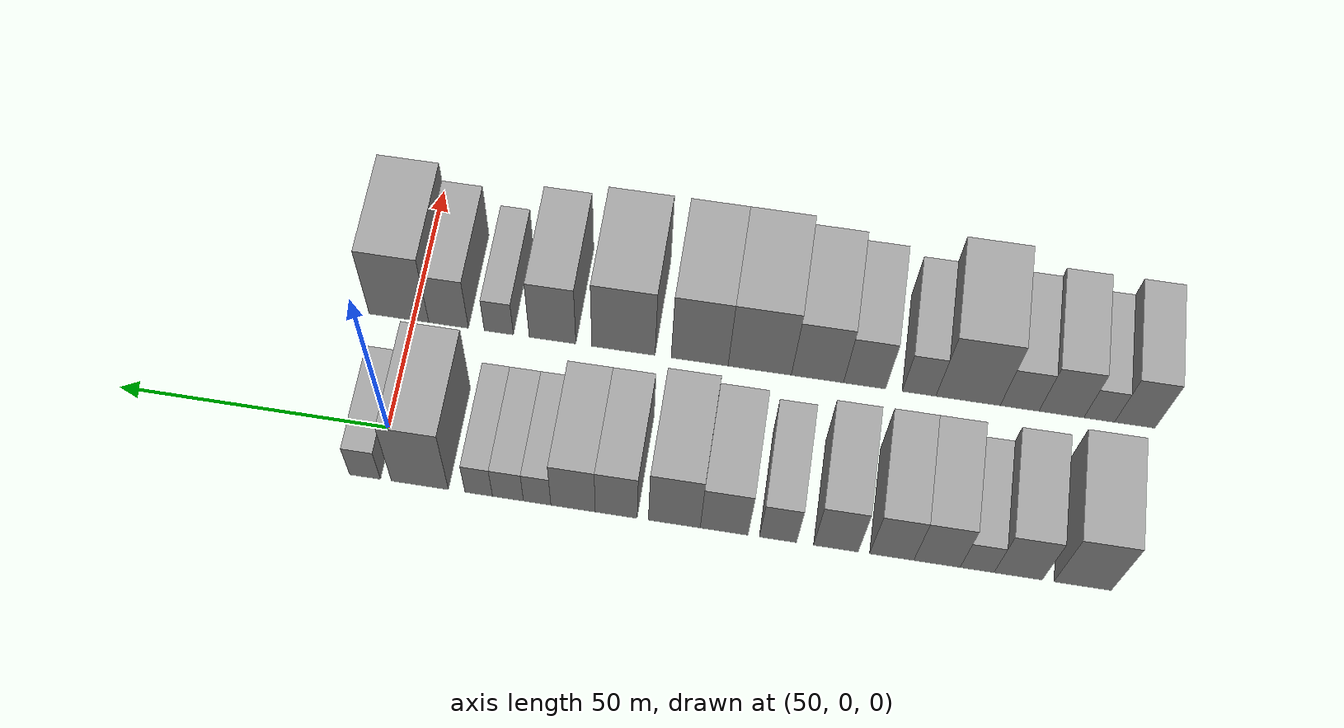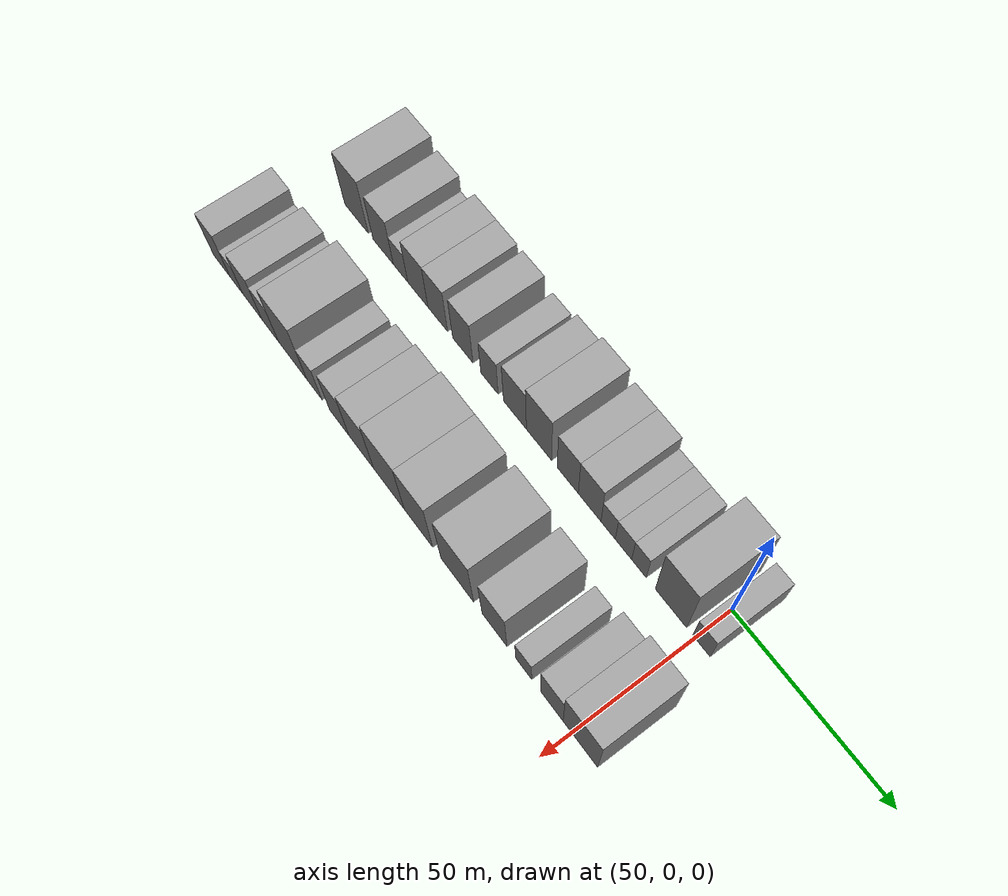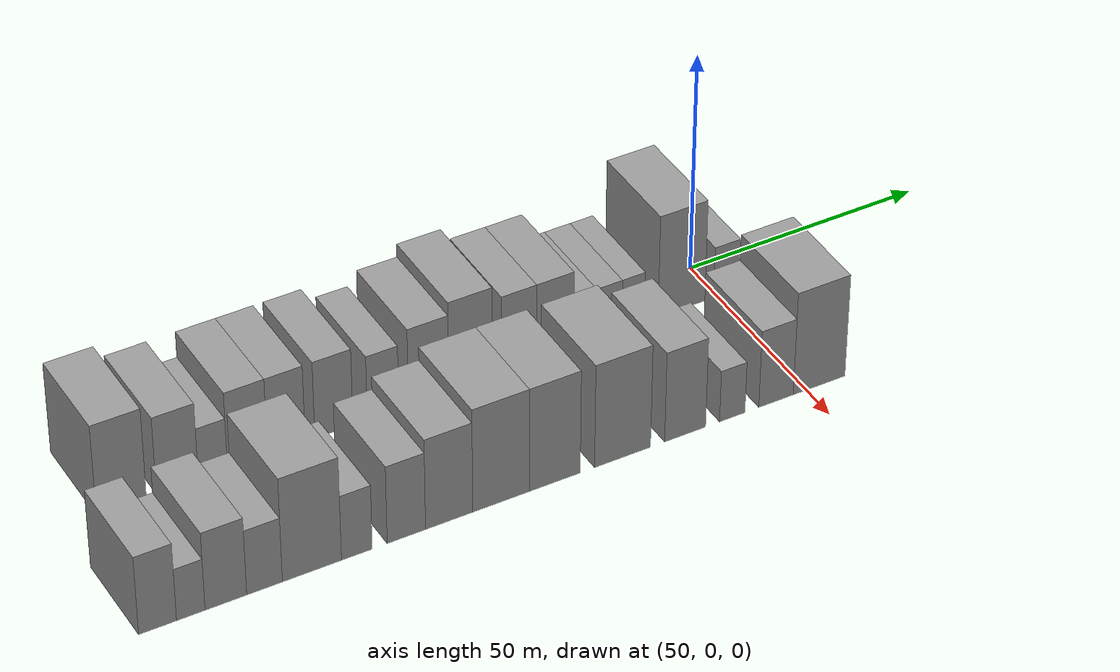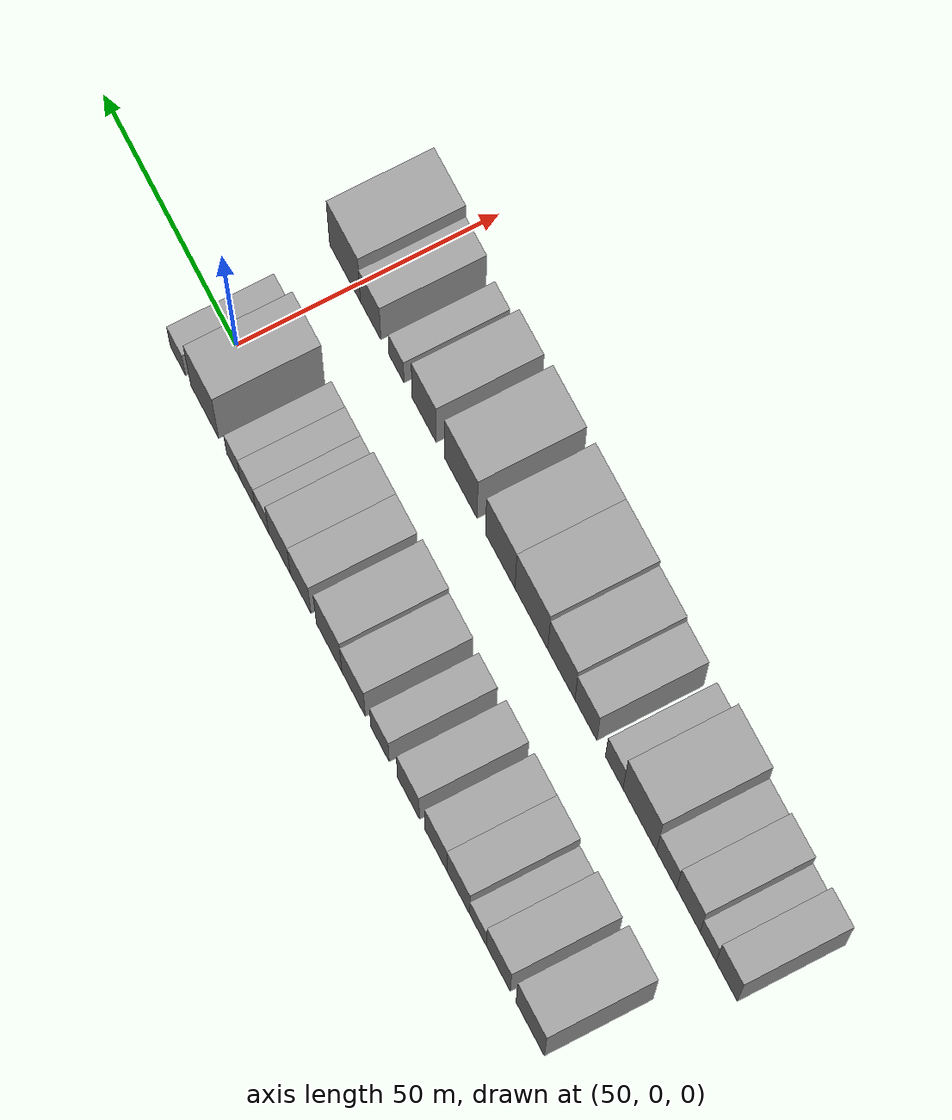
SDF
<sdf version="1.6">
 <world name="default">
  <model name="building_19">
   <static>1</static>
   <pose>50.0000 -125.2117 0 0.000000 0.000000 0.000000</pose>
   <link name="link">
    <pose>0 0 10.50 0 0 0</pose>
    <collision name="collision"><geometry><box><size>20.0000 9.8934 21.0000</size></box></geometry></collision>
    <visual name="visual">
     <cast_shadows>0</cast_shadows>
     <geometry><box><size>20.0000 9.8934 21.0000</size></box></geometry>
     <material>
      <script>
       <uri>model://grey_wall/materials/scripts</uri>
       <uri>model://grey_wall/materials/textures</uri>
       <name>vrc/grey_wall</name>
      </script>
     </material>
    </visual>
   </link>
  </model>
  <model name="building_20">
   <static>1</static>
   <pose>50.0000 -114.0749 0 0.000000 0.000000 0.000000</pose>
   <link name="link">
    <pose>0 0 9.00 0 0 0</pose>
    <collision name="collision"><geometry><box><size>20.0000 8.3802 18.0000</size></box></geometry></collision>
    <visual name="visual">
     <cast_shadows>0</cast_shadows>
     <geometry><box><size>20.0000 8.3802 18.0000</size></box></geometry>
     <material>
      <script>
       <uri>model://grey_wall/materials/scripts</uri>
       <uri>model://grey_wall/materials/textures</uri>
       <name>vrc/grey_wall</name>
      </script>
     </material>
    </visual>
   </link>
  </model>
  <model name="building_21">
   <static>1</static>
   <pose>50.0000 -106.9440 0 0.000000 0.000000 0.000000</pose>
   <link name="link">
    <pose>0 0 6.00 0 0 0</pose>
    <collision name="collision"><geometry><box><size>20.0000 5.8816 12.0000</size></box></geometry></collision>
    <visual name="visual">
     <cast_shadows>0</cast_shadows>
     <geometry><box><size>20.0000 5.8816 12.0000</size></box></geometry>
     <material>
      <script>
       <uri>model://grey_wall/materials/scripts</uri>
       <uri>model://grey_wall/materials/textures</uri>
       <name>vrc/grey_wall</name>
      </script>
     </material>
    </visual>
   </link>
  </model>
  <model name="building_22">
   <static>1</static>
   <pose>50.0000 -99.9603 0 0.000000 0.000000 0.000000</pose>
   <link name="link">
    <pose>0 0 9.00 0 0 0</pose>
    <collision name="collision"><geometry><box><size>20.0000 8.0857 18.0000</size></box></geometry></collision>
    <visual name="visual">
     <cast_shadows>0</cast_shadows>
     <geometry><box><size>20.0000 8.0857 18.0000</size></box></geometry>
     <material>
      <script>
       <uri>model://grey_wall/materials/scripts</uri>
       <uri>model://grey_wall/materials/textures</uri>
       <name>vrc/grey_wall</name>
      </script>
     </material>
    </visual>
   </link>
  </model>
  <model name="building_23">
   <static>1</static>
   <pose>50.0000 -92.0587 0 0.000000 0.000000 0.000000</pose>
   <link name="link">
    <pose>0 0 9.00 0 0 0</pose>
    <collision name="collision"><geometry><box><size>20.0000 7.7175 18.0000</size></box></geometry></collision>
    <visual name="visual">
     <cast_shadows>0</cast_shadows>
     <geometry><box><size>20.0000 7.7175 18.0000</size></box></geometry>
     <material>
      <script>
       <uri>model://grey_wall/materials/scripts</uri>
       <uri>model://grey_wall/materials/textures</uri>
       <name>vrc/grey_wall</name>
      </script>
     </material>
    </visual>
   </link>
  </model>
  <model name="building_24">
   <static>1</static>
   <pose>50.0000 -82.2787 0 0.000000 0.000000 0.000000</pose>
   <link name="link">
    <pose>0 0 9.00 0 0 0</pose>
    <collision name="collision"><geometry><box><size>20.0000 7.8427 18.0000</size></box></geometry></collision>
    <visual name="visual">
     <cast_shadows>0</cast_shadows>
     <geometry><box><size>20.0000 7.8427 18.0000</size></box></geometry>
     <material>
      <script>
       <uri>model://grey_wall/materials/scripts</uri>
       <uri>model://grey_wall/materials/textures</uri>
       <name>vrc/grey_wall</name>
      </script>
     </material>
    </visual>
   </link>
  </model>
  <model name="building_25">
   <static>1</static>
   <pose>50.0000 -72.0794 0 0.000000 0.000000 0.000000</pose>
   <link name="link">
    <pose>0 0 7.50 0 0 0</pose>
    <collision name="collision"><geometry><box><size>20.0000 6.5558 15.0000</size></box></geometry></collision>
    <visual name="visual">
     <cast_shadows>0</cast_shadows>
     <geometry><box><size>20.0000 6.5558 15.0000</size></box></geometry>
     <material>
      <script>
       <uri>model://grey_wall/materials/scripts</uri>
       <uri>model://grey_wall/materials/textures</uri>
       <name>vrc/grey_wall</name>
      </script>
     </material>
    </visual>
   </link>
  </model>
  <model name="building_26">
   <static>1</static>
   <pose>50.0000 -62.5581 0 0.000000 0.000000 0.000000</pose>
   <link name="link">
    <pose>0 0 9.00 0 0 0</pose>
    <collision name="collision"><geometry><box><size>20.0000 8.4868 18.0000</size></box></geometry></collision>
    <visual name="visual">
     <cast_shadows>0</cast_shadows>
     <geometry><box><size>20.0000 8.4868 18.0000</size></box></geometry>
     <material>
      <script>
       <uri>model://grey_wall/materials/scripts</uri>
       <uri>model://grey_wall/materials/textures</uri>
       <name>vrc/grey_wall</name>
      </script>
     </material>
    </visual>
   </link>
  </model>
  <model name="building_27">
   <static>1</static>
   <pose>50.0000 -53.7057 0 0.000000 0.000000 0.000000</pose>
   <link name="link">
    <pose>0 0 10.50 0 0 0</pose>
    <collision name="collision"><geometry><box><size>20.0000 9.2180 21.0000</size></box></geometry></collision>
    <visual name="visual">
     <cast_shadows>0</cast_shadows>
     <geometry><box><size>20.0000 9.2180 21.0000</size></box></geometry>
     <material>
      <script>
       <uri>model://grey_wall/materials/scripts</uri>
       <uri>model://grey_wall/materials/textures</uri>
       <name>vrc/grey_wall</name>
      </script>
     </material>
    </visual>
   </link>
  </model>
  <model name="building_28">
   <static>1</static>
   <pose>50.0000 -43.3531 0 0.000000 0.000000 0.000000</pose>
   <link name="link">
    <pose>0 0 9.00 0 0 0</pose>
    <collision name="collision"><geometry><box><size>20.0000 7.4873 18.0000</size></box></geometry></collision>
    <visual name="visual">
     <cast_shadows>0</cast_shadows>
     <geometry><box><size>20.0000 7.4873 18.0000</size></box></geometry>
     <material>
      <script>
       <uri>model://grey_wall/materials/scripts</uri>
       <uri>model://grey_wall/materials/textures</uri>
       <name>vrc/grey_wall</name>
      </script>
     </material>
    </visual>
   </link>
  </model>
  <model name="building_29">
   <static>1</static>
   <pose>50.0000 -35.6290 0 0.000000 0.000000 0.000000</pose>
   <link name="link">
    <pose>0 0 9.00 0 0 0</pose>
    <collision name="collision"><geometry><box><size>20.0000 7.9609 18.0000</size></box></geometry></collision>
    <visual name="visual">
     <cast_shadows>0</cast_shadows>
     <geometry><box><size>20.0000 7.9609 18.0000</size></box></geometry>
     <material>
      <script>
       <uri>model://grey_wall/materials/scripts</uri>
       <uri>model://grey_wall/materials/textures</uri>
       <name>vrc/grey_wall</name>
      </script>
     </material>
    </visual>
   </link>
  </model>
  <model name="building_30">
   <static>1</static>
   <pose>50.0000 -29.1863 0 0.000000 0.000000 0.000000</pose>
   <link name="link">
    <pose>0 0 6.00 0 0 0</pose>
    <collision name="collision"><geometry><box><size>20.0000 4.9245 12.0000</size></box></geometry></collision>
    <visual name="visual">
     <cast_shadows>0</cast_shadows>
     <geometry><box><size>20.0000 4.9245 12.0000</size></box></geometry>
     <material>
      <script>
       <uri>model://grey_wall/materials/scripts</uri>
       <uri>model://grey_wall/materials/textures</uri>
       <name>vrc/grey_wall</name>
      </script>
     </material>
    </visual>
   </link>
  </model>
  <model name="building_31">
   <static>1</static>
   <pose>50.0000 -23.9347 0 0.000000 0.000000 0.000000</pose>
   <link name="link">
    <pose>0 0 6.00 0 0 0</pose>
    <collision name="collision"><geometry><box><size>20.0000 5.5786 12.0000</size></box></geometry></collision>
    <visual name="visual">
     <cast_shadows>0</cast_shadows>
     <geometry><box><size>20.0000 5.5786 12.0000</size></box></geometry>
     <material>
      <script>
       <uri>model://grey_wall/materials/scripts</uri>
       <uri>model://grey_wall/materials/textures</uri>
       <name>vrc/grey_wall</name>
      </script>
     </material>
    </visual>
   </link>
  </model>
  <model name="building_32">
   <static>1</static>
   <pose>50.0000 -18.6624 0 0.000000 0.000000 0.000000</pose>
   <link name="link">
    <pose>0 0 6.00 0 0 0</pose>
    <collision name="collision"><geometry><box><size>20.0000 4.9661 12.0000</size></box></geometry></collision>
    <visual name="visual">
     <cast_shadows>0</cast_shadows>
     <geometry><box><size>20.0000 4.9661 12.0000</size></box></geometry>
     <material>
      <script>
       <uri>model://grey_wall/materials/scripts</uri>
       <uri>model://grey_wall/materials/textures</uri>
       <name>vrc/grey_wall</name>
      </script>
     </material>
    </visual>
   </link>
  </model>
  <model name="building_33">
   <static>1</static>
   <pose>50.0000 -8.0052 0 0.000000 0.000000 0.000000</pose>
   <link name="link">
    <pose>0 0 12.00 0 0 0</pose>
    <collision name="collision"><geometry><box><size>20.0000 10.3484 24.0000</size></box></geometry></collision>
    <visual name="visual">
     <cast_shadows>0</cast_shadows>
     <geometry><box><size>20.0000 10.3484 24.0000</size></box></geometry>
     <material>
      <script>
       <uri>model://grey_wall/materials/scripts</uri>
       <uri>model://grey_wall/materials/textures</uri>
       <name>vrc/grey_wall</name>
      </script>
     </material>
    </visual>
   </link>
  </model>
  <model name="building_34">
   <static>1</static>
   <pose>50.0000 1.9745 0 0.000000 0.000000 0.000000</pose>
   <link name="link">
    <pose>0 0 6.00 0 0 0</pose>
    <collision name="collision"><geometry><box><size>20.0000 5.6110 12.0000</size></box></geometry></collision>
    <visual name="visual">
     <cast_shadows>0</cast_shadows>
     <geometry><box><size>20.0000 5.6110 12.0000</size></box></geometry>
     <material>
      <script>
       <uri>model://grey_wall/materials/scripts</uri>
       <uri>model://grey_wall/materials/textures</uri>
       <name>vrc/grey_wall</name>
      </script>
     </material>
    </visual>
   </link>
  </model>
  <model name="building_79">
   <static>1</static>
   <pose>82.0000 -133.1547 0 0.000000 0.000000 0.000000</pose>
   <link name="link">
    <pose>0 0 9.00 0 0 0</pose>
    <collision name="collision"><geometry><box><size>20.0000 7.2952 18.0000</size></box></geometry></collision>
    <visual name="visual">
     <cast_shadows>0</cast_shadows>
     <geometry><box><size>20.0000 7.2952 18.0000</size></box></geometry>
     <material>
      <script>
       <uri>model://grey_wall/materials/scripts</uri>
       <uri>model://grey_wall/materials/textures</uri>
       <name>vrc/grey_wall</name>
      </script>
     </material>
    </visual>
   </link>
  </model>
  <model name="building_80">
   <static>1</static>
   <pose>82.0000 -126.7506 0 0.000000 0.000000 0.000000</pose>
   <link name="link">
    <pose>0 0 6.00 0 0 0</pose>
    <collision name="collision"><geometry><box><size>20.0000 5.5130 12.0000</size></box></geometry></collision>
    <visual name="visual">
     <cast_shadows>0</cast_shadows>
     <geometry><box><size>20.0000 5.5130 12.0000</size></box></geometry>
     <material>
      <script>
       <uri>model://grey_wall/materials/scripts</uri>
       <uri>model://grey_wall/materials/textures</uri>
       <name>vrc/grey_wall</name>
      </script>
     </material>
    </visual>
   </link>
  </model>
  <model name="building_81">
   <static>1</static>
   <pose>82.0000 -119.9399 0 0.000000 0.000000 0.000000</pose>
   <link name="link">
    <pose>0 0 9.00 0 0 0</pose>
    <collision name="collision"><geometry><box><size>20.0000 8.1084 18.0000</size></box></geometry></collision>
    <visual name="visual">
     <cast_shadows>0</cast_shadows>
     <geometry><box><size>20.0000 8.1084 18.0000</size></box></geometry>
     <material>
      <script>
       <uri>model://grey_wall/materials/scripts</uri>
       <uri>model://grey_wall/materials/textures</uri>
       <name>vrc/grey_wall</name>
      </script>
     </material>
    </visual>
   </link>
  </model>
  <model name="building_82">
   <static>1</static>
   <pose>82.0000 -112.3804 0 0.000000 0.000000 0.000000</pose>
   <link name="link">
    <pose>0 0 7.50 0 0 0</pose>
    <collision name="collision"><geometry><box><size>20.0000 7.0106 15.0000</size></box></geometry></collision>
    <visual name="visual">
     <cast_shadows>0</cast_shadows>
     <geometry><box><size>20.0000 7.0106 15.0000</size></box></geometry>
     <material>
      <script>
       <uri>model://grey_wall/materials/scripts</uri>
       <uri>model://grey_wall/materials/textures</uri>
       <name>vrc/grey_wall</name>
      </script>
     </material>
    </visual>
   </link>
  </model>
  <model name="building_83">
   <static>1</static>
   <pose>82.0000 -103.0256 0 0.000000 0.000000 0.000000</pose>
   <link name="link">
    <pose>0 0 12.00 0 0 0</pose>
    <collision name="collision"><geometry><box><size>20.0000 11.6991 24.0000</size></box></geometry></collision>
    <visual name="visual">
     <cast_shadows>0</cast_shadows>
     <geometry><box><size>20.0000 11.6991 24.0000</size></box></geometry>
     <material>
      <script>
       <uri>model://grey_wall/materials/scripts</uri>
       <uri>model://grey_wall/materials/textures</uri>
       <name>vrc/grey_wall</name>
      </script>
     </material>
    </visual>
   </link>
  </model>
  <model name="building_84">
   <static>1</static>
   <pose>82.0000 -94.0986 0 0.000000 0.000000 0.000000</pose>
   <link name="link">
    <pose>0 0 7.50 0 0 0</pose>
    <collision name="collision"><geometry><box><size>20.0000 6.1549 15.0000</size></box></geometry></collision>
    <visual name="visual">
     <cast_shadows>0</cast_shadows>
     <geometry><box><size>20.0000 6.1549 15.0000</size></box></geometry>
     <material>
      <script>
       <uri>model://grey_wall/materials/scripts</uri>
       <uri>model://grey_wall/materials/textures</uri>
       <name>vrc/grey_wall</name>
      </script>
     </material>
    </visual>
   </link>
  </model>
  <model name="building_85">
   <static>1</static>
   <pose>82.0000 -84.1501 0 0.000000 0.000000 0.000000</pose>
   <link name="link">
    <pose>0 0 9.00 0 0 0</pose>
    <collision name="collision"><geometry><box><size>20.0000 7.7421 18.0000</size></box></geometry></collision>
    <visual name="visual">
     <cast_shadows>0</cast_shadows>
     <geometry><box><size>20.0000 7.7421 18.0000</size></box></geometry>
     <material>
      <script>
       <uri>model://grey_wall/materials/scripts</uri>
       <uri>model://grey_wall/materials/textures</uri>
       <name>vrc/grey_wall</name>
      </script>
     </material>
    </visual>
   </link>
  </model>
  <model name="building_86">
   <static>1</static>
   <pose>82.0000 -75.4805 0 0.000000 0.000000 0.000000</pose>
   <link name="link">
    <pose>0 0 10.50 0 0 0</pose>
    <collision name="collision"><geometry><box><size>20.0000 9.5971 21.0000</size></box></geometry></collision>
    <visual name="visual">
     <cast_shadows>0</cast_shadows>
     <geometry><box><size>20.0000 9.5971 21.0000</size></box></geometry>
     <material>
      <script>
       <uri>model://grey_wall/materials/scripts</uri>
       <uri>model://grey_wall/materials/textures</uri>
       <name>vrc/grey_wall</name>
      </script>
     </material>
    </visual>
   </link>
  </model>
  <model name="building_87">
   <static>1</static>
   <pose>82.0000 -64.8374 0 0.000000 0.000000 0.000000</pose>
   <link name="link">
    <pose>0 0 12.00 0 0 0</pose>
    <collision name="collision"><geometry><box><size>20.0000 11.6890 24.0000</size></box></geometry></collision>
    <visual name="visual">
     <cast_shadows>0</cast_shadows>
     <geometry><box><size>20.0000 11.6890 24.0000</size></box></geometry>
     <material>
      <script>
       <uri>model://grey_wall/materials/scripts</uri>
       <uri>model://grey_wall/materials/textures</uri>
       <name>vrc/grey_wall</name>
      </script>
     </material>
    </visual>
   </link>
  </model>
  <model name="building_88">
   <static>1</static>
   <pose>82.0000 -53.7131 0 0.000000 0.000000 0.000000</pose>
   <link name="link">
    <pose>0 0 12.00 0 0 0</pose>
    <collision name="collision"><geometry><box><size>20.0000 10.5598 24.0000</size></box></geometry></collision>
    <visual name="visual">
     <cast_shadows>0</cast_shadows>
     <geometry><box><size>20.0000 10.5598 24.0000</size></box></geometry>
     <material>
      <script>
       <uri>model://grey_wall/materials/scripts</uri>
       <uri>model://grey_wall/materials/textures</uri>
       <name>vrc/grey_wall</name>
      </script>
     </material>
    </visual>
   </link>
  </model>
  <model name="building_89">
   <static>1</static>
   <pose>82.0000 -39.5381 0 0.000000 0.000000 0.000000</pose>
   <link name="link">
    <pose>0 0 12.00 0 0 0</pose>
    <collision name="collision"><geometry><box><size>20.0000 11.7902 24.0000</size></box></geometry></collision>
    <visual name="visual">
     <cast_shadows>0</cast_shadows>
     <geometry><box><size>20.0000 11.7902 24.0000</size></box></geometry>
     <material>
      <script>
       <uri>model://grey_wall/materials/scripts</uri>
       <uri>model://grey_wall/materials/textures</uri>
       <name>vrc/grey_wall</name>
      </script>
     </material>
    </visual>
   </link>
  </model>
  <model name="building_90">
   <static>1</static>
   <pose>82.0000 -26.2651 0 0.000000 0.000000 0.000000</pose>
   <link name="link">
    <pose>0 0 10.50 0 0 0</pose>
    <collision name="collision"><geometry><box><size>20.0000 8.7557 21.0000</size></box></geometry></collision>
    <visual name="visual">
     <cast_shadows>0</cast_shadows>
     <geometry><box><size>20.0000 8.7557 21.0000</size></box></geometry>
     <material>
      <script>
       <uri>model://grey_wall/materials/scripts</uri>
       <uri>model://grey_wall/materials/textures</uri>
       <name>vrc/grey_wall</name>
      </script>
     </material>
    </visual>
   </link>
  </model>
  <model name="building_91">
   <static>1</static>
   <pose>82.0000 -16.1471 0 0.000000 0.000000 0.000000</pose>
   <link name="link">
    <pose>0 0 6.00 0 0 0</pose>
    <collision name="collision"><geometry><box><size>20.0000 5.4804 12.0000</size></box></geometry></collision>
    <visual name="visual">
     <cast_shadows>0</cast_shadows>
     <geometry><box><size>20.0000 5.4804 12.0000</size></box></geometry>
     <material>
      <script>
       <uri>model://grey_wall/materials/scripts</uri>
       <uri>model://grey_wall/materials/textures</uri>
       <name>vrc/grey_wall</name>
      </script>
     </material>
    </visual>
   </link>
  </model>
  <model name="building_92">
   <static>1</static>
   <pose>82.0000 -6.6568 0 0.000000 0.000000 0.000000</pose>
   <link name="link">
    <pose>0 0 9.00 0 0 0</pose>
    <collision name="collision"><geometry><box><size>20.0000 7.5002 18.0000</size></box></geometry></collision>
    <visual name="visual">
     <cast_shadows>0</cast_shadows>
     <geometry><box><size>20.0000 7.5002 18.0000</size></box></geometry>
     <material>
      <script>
       <uri>model://grey_wall/materials/scripts</uri>
       <uri>model://grey_wall/materials/textures</uri>
       <name>vrc/grey_wall</name>
      </script>
     </material>
    </visual>
   </link>
  </model>
  <model name="building_93">
   <static>1</static>
   <pose>82.0000 2.7596 0 0.000000 0.000000 0.000000</pose>
   <link name="link">
    <pose>0 0 12.00 0 0 0</pose>
    <collision name="collision"><geometry><box><size>20.0000 11.3326 24.0000</size></box></geometry></collision>
    <visual name="visual">
     <cast_shadows>0</cast_shadows>
     <geometry><box><size>20.0000 11.3326 24.0000</size></box></geometry>
     <material>
      <script>
       <uri>model://grey_wall/materials/scripts</uri>
       <uri>model://grey_wall/materials/textures</uri>
       <name>vrc/grey_wall</name>
      </script>
     </material>
    </visual>
   </link>
  </model>
 </world>
</sdf>
